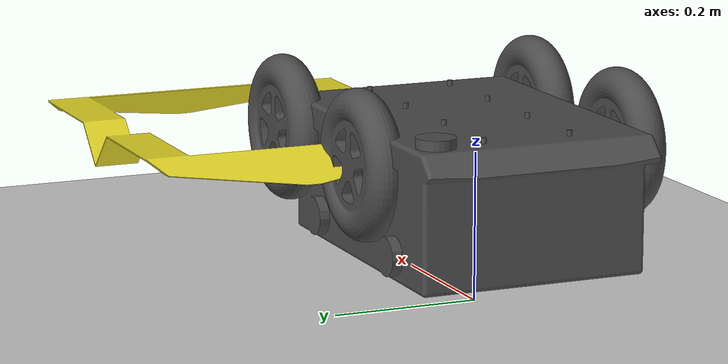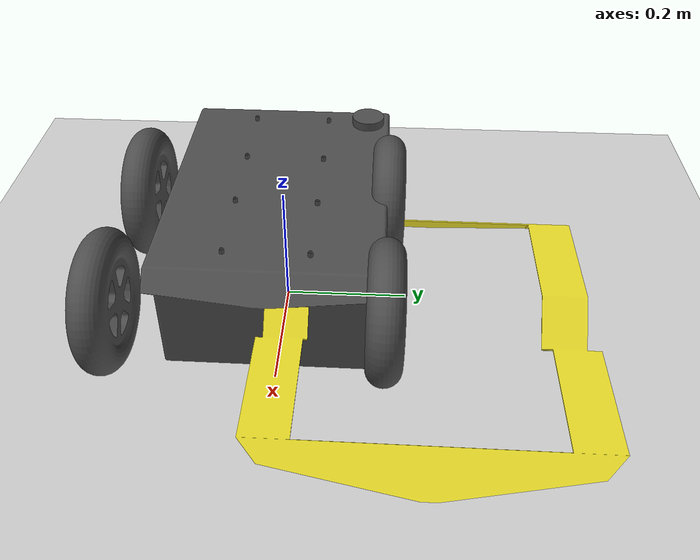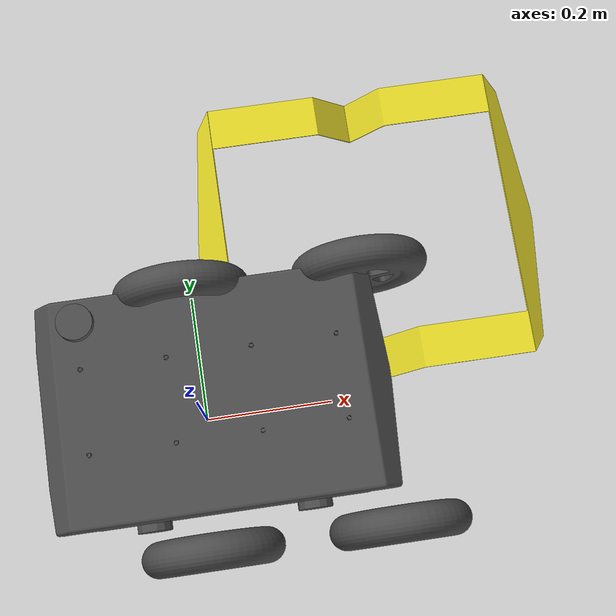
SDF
<sdf version="1.4">
 <world name="default">
  <light name="sun" type="directional">
   <pose>0 0 10 0 -0 0</pose>
   <diffuse>0.8 0.8 0.8 1</diffuse>
   <specular>0.2 0.2 0.2 1</specular>
   <attenuation>
    <range>1000</range>
    <constant>0.9</constant>
    <linear>0.01</linear>
    <quadratic>0.001</quadratic>
   </attenuation>
   <direction>-0.5 0.1 -0.9</direction>
  </light>
  <model name="ground_plane">
   <static>1</static>
   <link name="link">
    <collision name="collision">
     <geometry><plane><normal>0 0 1</normal><size>100 100</size></plane></geometry>
     <surface><friction><ode><mu>100</mu><mu2>50</mu2></ode></friction></surface>
    </collision>
    <visual name="visual">
     <cast_shadows>0</cast_shadows>
     <geometry><plane><normal>0 0 1</normal><size>100 100</size></plane></geometry>
     <material>
      <script><uri>file://media/materials/scripts/gazebo.material</uri><name>Gazebo/Grey</name></script>
     </material>
    </visual>
    <velocity_decay><linear>0</linear><angular>0</angular></velocity_decay>
   </link>
  </model>
  <physics type="ode">
   <max_step_size>0.001</max_step_size>
   <real_time_factor>1</real_time_factor>
   <real_time_update_rate>1000</real_time_update_rate>
   <gravity>0 0 -9.8</gravity>
  </physics>
  <scene><ambient>0.4 0.4 0.4 1</ambient><background>0.7 0.7 0.7 1</background><shadows>1</shadows></scene>
  <spherical_coordinates>
   <surface_model>EARTH_WGS84</surface_model>
   <latitude_deg>0</latitude_deg>
   <longitude_deg>0</longitude_deg>
   <elevation>0</elevation>
   <heading_deg>0</heading_deg>
  </spherical_coordinates>
  <model name="jackal">
   <link name="base_link">
    <inertial>
     <pose>0.0119993 0.00199988 0.0669959 0 -0 0</pose>
     <mass>16.524</mass>
     <inertia>
      <ixx>0.313604</ixx>
      <ixy>-0.000800024</ixy>
      <ixz>0.0163992</ixz>
      <iyy>0.392205</iyy>
      <iyz>-0.000900134</iyz>
      <izz>0.4485</izz>
     </inertia>
    </inertial>
    <collision name="base_link_collision_chassis_link">
     <pose>0 0 0.092 0 -0 0</pose>
     <geometry><box><size>0.42 0.31 0.184</size></box></geometry>
    </collision>
    <visual name="base_link_visual_chassis_link">
     <pose>0 0 -0.0655 1.5708 -5.55112e-17 1.5708</pose>
     <geometry>
      <mesh><scale>1 1 1</scale><uri>/opt/ros/indigo/share/jackal_description/meshes/jackal-base.stl</uri></mesh>
     </geometry>
     <material><script><name>Gazebo/DarkGrey</name><uri>__default__</uri></script></material>
    </visual>
    <visual name="base_link_visual_fenders_link">
     <pose>0 0 -0.0655 1.5708 -5.55112e-17 1.5708</pose>
     <geometry>
      <mesh><scale>1 1 1</scale><uri>/opt/ros/indigo/share/jackal_description/meshes/jackal-fenders.stl</uri></mesh>
     </geometry>
     <material><script><name>Gazebo/Yellow</name><uri>__default__</uri></script></material>
    </visual>
    <visual name="base_link_visual_navsat_link">
     <pose>-0.18 0.126 0.1895 0 -0 0</pose>
     <geometry><cylinder><length>0.016</length><radius>0.026</radius></cylinder></geometry>
     <material><script><name>Gazebo/DarkGrey</name><uri>__default__</uri></script></material>
    </visual>
    <velocity_decay><linear>0</linear><angular>0</angular></velocity_decay>
    <velocity_decay><linear>0</linear><angular>0</angular></velocity_decay>
    <velocity_decay><linear>0</linear><angular>0</angular></velocity_decay>
    <velocity_decay><linear>0</linear><angular>0</angular></velocity_decay>
    <velocity_decay><linear>0</linear><angular>0</angular></velocity_decay>
   </link>
   <link name="front_left_wheel_link">
    <pose>0.131 0.187795 0.0345 0 -0 0</pose>
    <inertial>
     <mass>0.477</mass>
     <inertia><ixx>0.0013</ixx><ixy>0</ixy><ixz>0</ixz><iyy>0.0024</iyy><iyz>0</iyz><izz>0.0013</izz></inertia>
    </inertial>
    <collision name="front_left_wheel_link_collision">
     <pose>0 0 0 1.5708 -0 0</pose>
     <geometry><cylinder><length>0.04</length><radius>0.098</radius></cylinder></geometry>
    </collision>
    <visual name="front_left_wheel_link_visual">
     <pose>0 0 0 1.5708 -0 0</pose>
     <geometry>
      <mesh><scale>1 1 1</scale><uri>/opt/ros/indigo/share/jackal_description/meshes/jackal-wheel.stl</uri></mesh>
     </geometry>
     <material><script><name>Gazebo/DarkGrey</name><uri>__default__</uri></script></material>
    </visual>
    <velocity_decay><linear>0</linear><angular>0</angular></velocity_decay>
   </link>
   <joint name="front_left_wheel" type="revolute">
    <child>front_left_wheel_link</child>
    <parent>base_link</parent>
    <axis><xyz>0 1 0</xyz><limit><lower>-1e+16</lower><upper>1e+16</upper></limit></axis>
   </joint>
   <link name="front_right_wheel_link">
    <pose>0.131 -0.187795 0.0345 0 -0 0</pose>
    <inertial>
     <mass>0.477</mass>
     <inertia><ixx>0.0013</ixx><ixy>0</ixy><ixz>0</ixz><iyy>0.0024</iyy><iyz>0</iyz><izz>0.0013</izz></inertia>
    </inertial>
    <collision name="front_right_wheel_link_collision">
     <pose>0 0 0 1.5708 -0 0</pose>
     <geometry><cylinder><length>0.04</length><radius>0.098</radius></cylinder></geometry>
    </collision>
    <visual name="front_right_wheel_link_visual">
     <pose>0 0 0 1.5708 -0 0</pose>
     <geometry>
      <mesh><scale>1 1 1</scale><uri>/opt/ros/indigo/share/jackal_description/meshes/jackal-wheel.stl</uri></mesh>
     </geometry>
     <material><script><name>Gazebo/DarkGrey</name><uri>__default__</uri></script></material>
    </visual>
    <velocity_decay><linear>0</linear><angular>0</angular></velocity_decay>
   </link>
   <joint name="front_right_wheel" type="revolute">
    <child>front_right_wheel_link</child>
    <parent>base_link</parent>
    <axis><xyz>0 1 0</xyz><limit><lower>-1e+16</lower><upper>1e+16</upper></limit></axis>
   </joint>
   <link name="rear_left_wheel_link">
    <pose>-0.131 0.187795 0.0345 0 -0 0</pose>
    <inertial>
     <mass>0.477</mass>
     <inertia><ixx>0.0013</ixx><ixy>0</ixy><ixz>0</ixz><iyy>0.0024</iyy><iyz>0</iyz><izz>0.0013</izz></inertia>
    </inertial>
    <collision name="rear_left_wheel_link_collision">
     <pose>0 0 0 1.5708 -0 0</pose>
     <geometry><cylinder><length>0.04</length><radius>0.098</radius></cylinder></geometry>
    </collision>
    <visual name="rear_left_wheel_link_visual">
     <pose>0 0 0 1.5708 -0 0</pose>
     <geometry>
      <mesh><scale>1 1 1</scale><uri>/opt/ros/indigo/share/jackal_description/meshes/jackal-wheel.stl</uri></mesh>
     </geometry>
     <material><script><name>Gazebo/DarkGrey</name><uri>__default__</uri></script></material>
    </visual>
    <velocity_decay><linear>0</linear><angular>0</angular></velocity_decay>
   </link>
   <joint name="rear_left_wheel" type="revolute">
    <child>rear_left_wheel_link</child>
    <parent>base_link</parent>
    <axis><xyz>0 1 0</xyz><limit><lower>-1e+16</lower><upper>1e+16</upper></limit></axis>
   </joint>
   <link name="rear_right_wheel_link">
    <pose>-0.131 -0.187795 0.0345 0 -0 0</pose>
    <inertial>
     <mass>0.477</mass>
     <inertia><ixx>0.0013</ixx><ixy>0</ixy><ixz>0</ixz><iyy>0.0024</iyy><iyz>0</iyz><izz>0.0013</izz></inertia>
    </inertial>
    <collision name="rear_right_wheel_link_collision">
     <pose>0 0 0 1.5708 -0 0</pose>
     <geometry><cylinder><length>0.04</length><radius>0.098</radius></cylinder></geometry>
    </collision>
    <visual name="rear_right_wheel_link_visual">
     <pose>0 0 0 1.5708 -0 0</pose>
     <geometry>
      <mesh><scale>1 1 1</scale><uri>/opt/ros/indigo/share/jackal_description/meshes/jackal-wheel.stl</uri></mesh>
     </geometry>
     <material><script><name>Gazebo/DarkGrey</name><uri>__default__</uri></script></material>
    </visual>
    <velocity_decay><linear>0</linear><angular>0</angular></velocity_decay>
   </link>
   <joint name="rear_right_wheel" type="revolute">
    <child>rear_right_wheel_link</child>
    <parent>base_link</parent>
    <axis><xyz>0 1 0</xyz><limit><lower>-1e+16</lower><upper>1e+16</upper></limit></axis>
   </joint>
   <plugin name="gazebo_ros_control" filename="libgazebo_ros_control.so">
    <robotNamespace>/</robotNamespace>
   </plugin>
   <plugin name="imu_controller" filename="libhector_gazebo_ros_imu.so">
    <robotNamespace>/</robotNamespace>
    <updateRate>50.0</updateRate>
    <topicName>imu/data</topicName>
    <accelDrift>0.005 0.005 0.005</accelDrift>
    <accelGaussianNoise>0.005 0.005 0.005</accelGaussianNoise>
    <rateDrift>0.005 0.005 0.005</rateDrift>
    <rateGaussianNoise>0.005 0.005 0.005</rateGaussianNoise>
    <headingDrift>0.005</headingDrift>
    <headingGaussianNoise>0.005</headingGaussianNoise>
    <bodyName>base_link</bodyName>
    <xyzOffset>0 0 0</xyzOffset>
    <rpyOffset>0 -0 0</rpyOffset>
   </plugin>
   <static>0</static>
   <plugin name="gps_controller" filename="libhector_gazebo_ros_gps.so">
    <updateRate>40</updateRate>
    <robotNamespace>/</robotNamespace>
    <frameId>base_link</frameId>
    <topicName>/navsat/fix</topicName>
    <velocityTopicName>/navsat/vel</velocityTopicName>
    <referenceLatitude>49.9</referenceLatitude>
    <referenceLongitude>8.9</referenceLongitude>
    <referenceHeading>0</referenceHeading>
    <referenceAltitude>0</referenceAltitude>
    <drift>0.0001 0.0001 0.0001</drift>
    <bodyName>base_link</bodyName>
    <xyzOffset>0.18 -0.126 -0.1815</xyzOffset>
    <rpyOffset>0 -0 0</rpyOffset>
   </plugin>
   <pose>0.028589 0.001255 0.0635 -0 -0 -0.004767</pose>
  </model>
 </world>
</sdf>
